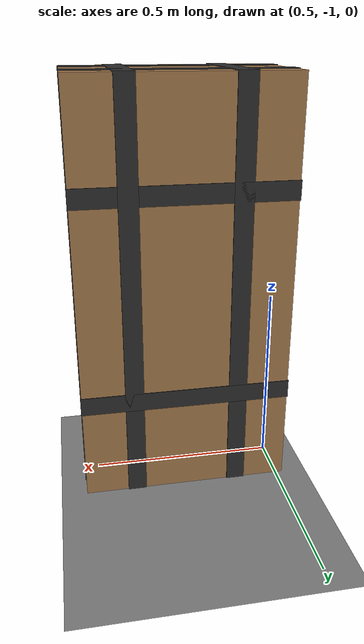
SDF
<sdf version="1.9">
 <world name="ecps295_lowbox_s8_monitor">
  <model name="ground_plane">
   <static>true</static>
   <link name="link">
    <collision name="collision">
     <geometry><plane><normal>0 0 1</normal><size>50 50</size></plane></geometry>
    </collision>
    <visual name="visual">
     <geometry><plane><normal>0 0 1</normal><size>50 50</size></plane></geometry>
     <material><ambient>0.5 0.5 0.5 1</ambient><diffuse>0.5 0.5 0.5 1</diffuse></material>
    </visual>
   </link>
  </model>
  <model name="lb3">
   <static>true</static>
   <pose>0.76 -1.05 0.55 0 0 0</pose>
   <link name="link">
    <collision name="c"><geometry><box><size>0.56 0.34 1.1</size></box></geometry></collision>
    <visual name="v">
     <geometry><box><size>0.56 0.34 1.1</size></box></geometry>
     <material><ambient>0.65 0.48 0.30 1</ambient><diffuse>0.65 0.48 0.30 1</diffuse></material>
    </visual>
    <visual name="tape_ring0">
     <pose>0.000 0.000 -0.275 0 0 0</pose>
     <geometry><box><size>0.564 0.344 0.050</size></box></geometry>
     <material><ambient>0.18 0.18 0.18 1</ambient><diffuse>0.18 0.18 0.18 1</diffuse></material>
    </visual>
    <visual name="tape_bx0">
     <pose>-0.140 0.000 0.000 0 0 0</pose>
     <geometry><box><size>0.050 0.344 1.104</size></box></geometry>
     <material><ambient>0.18 0.18 0.18 1</ambient><diffuse>0.18 0.18 0.18 1</diffuse></material>
    </visual>
    <visual name="tape_by0">
     <pose>0.000 -0.085 0.000 0 0 0</pose>
     <geometry><box><size>0.564 0.050 1.104</size></box></geometry>
     <material><ambient>0.18 0.18 0.18 1</ambient><diffuse>0.18 0.18 0.18 1</diffuse></material>
    </visual>
    <visual name="tape_ring1">
     <pose>0.000 0.000 0.275 0 0 0</pose>
     <geometry><box><size>0.564 0.344 0.050</size></box></geometry>
     <material><ambient>0.18 0.18 0.18 1</ambient><diffuse>0.18 0.18 0.18 1</diffuse></material>
    </visual>
    <visual name="tape_bx1">
     <pose>0.140 0.000 0.000 0 0 0</pose>
     <geometry><box><size>0.050 0.344 1.104</size></box></geometry>
     <material><ambient>0.18 0.18 0.18 1</ambient><diffuse>0.18 0.18 0.18 1</diffuse></material>
    </visual>
    <visual name="tape_by1">
     <pose>0.000 0.085 0.000 0 0 0</pose>
     <geometry><box><size>0.564 0.050 1.104</size></box></geometry>
     <material><ambient>0.18 0.18 0.18 1</ambient><diffuse>0.18 0.18 0.18 1</diffuse></material>
    </visual>
   </link>
  </model>
 </world>
</sdf>
